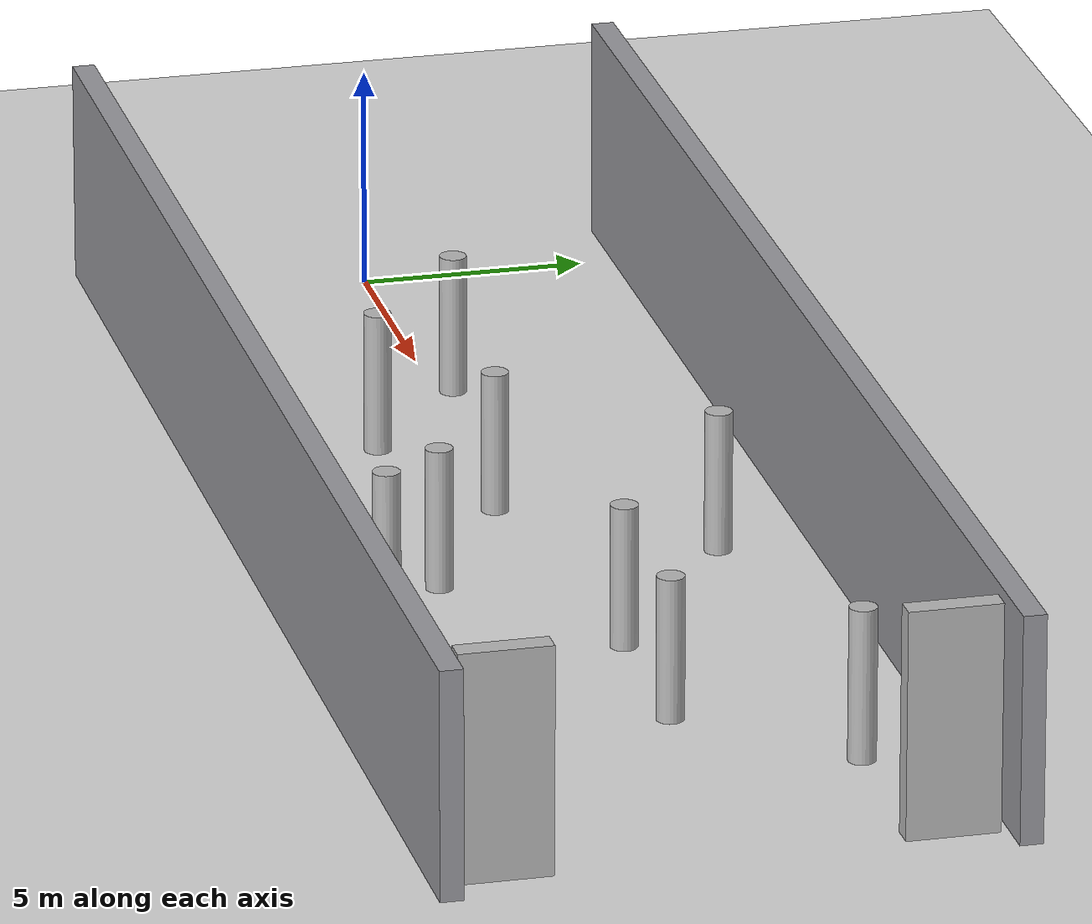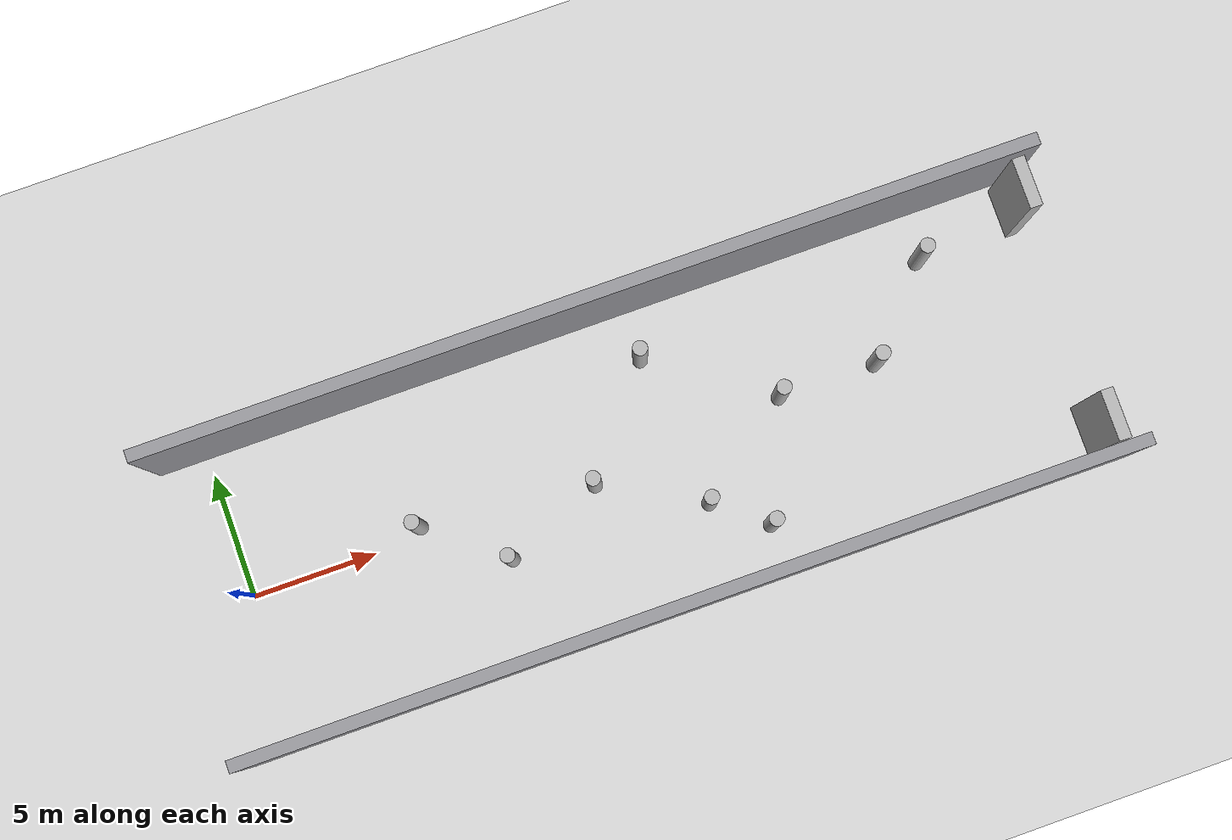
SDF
<sdf version="1.10">
 <world name="obstacle_avoidance">
  <physics type="ode">
   <max_step_size>0.0040000000000000001</max_step_size>
   <real_time_factor>1</real_time_factor>
   <real_time_update_rate>250</real_time_update_rate>
  </physics>
  <plugin name="gz::sim::systems::Physics" filename="gz-sim-physics-system"/>
  <plugin name="gz::sim::systems::UserCommands" filename="gz-sim-user-commands-system"/>
  <plugin name="gz::sim::systems::SceneBroadcaster" filename="gz-sim-scene-broadcaster-system"/>
  <plugin name="gz::sim::systems::Contact" filename="gz-sim-contact-system"/>
  <plugin name="gz::sim::systems::Imu" filename="gz-sim-imu-system"/>
  <plugin name="gz::sim::systems::AirPressure" filename="gz-sim-air-pressure-system"/>
  <plugin name="gz::sim::systems::AirSpeed" filename="gz-sim-air-speed-system"/>
  <plugin name="gz::sim::systems::ApplyLinkWrench" filename="gz-sim-apply-link-wrench-system"/>
  <plugin name="gz::sim::systems::NavSat" filename="gz-sim-navsat-system"/>
  <plugin name="gz::sim::systems::Magnetometer" filename="gz-sim-magnetometer-system"/>
  <plugin name="gz::sim::systems::Sensors" filename="gz-sim-sensors-system">
   <render_engine>ogre2</render_engine>
  </plugin>
  <plugin name="custom::OpticalFlowSystem" filename="libOpticalFlowSystem.so"/>
  <plugin name="custom::GstCameraSystem" filename="libGstCameraSystem.so"/>
  <gravity>0 0 -9.8000000000000007</gravity>
  <magnetic_field>6.0000000000000002e-06 2.3e-05 -4.1999999999999998e-05</magnetic_field>
  <atmosphere type="adiabatic"/>
  <scene>
   <grid>true</grid>
   <ambient>0.449999988 0.449999988 0.449999988 1</ambient>
   <background>0.74000001 0.769999981 0.819999993 1</background>
   <shadows>true</shadows>
  </scene>
  <spherical_coordinates>
   <surface_model>EARTH_WGS84</surface_model>
   <world_frame_orientation>ENU</world_frame_orientation>
   <latitude_deg>47.397971057728974</latitude_deg>
   <longitude_deg>8.5461637398001464</longitude_deg>
   <elevation>0</elevation>
   <heading_deg>0</heading_deg>
  </spherical_coordinates>
  <model name="ground_plane">
   <static>true</static>
   <link name="link">
    <collision name="collision">
     <geometry><plane><normal>0 0 1</normal><size>1 1</size></plane></geometry>
    </collision>
    <visual name="visual">
     <geometry><plane><normal>0 0 1</normal><size>120 120</size></plane></geometry>
     <material>
      <ambient>0.850000024 0.850000024 0.850000024 1</ambient>
      <diffuse>0.850000024 0.850000024 0.850000024 1</diffuse>
      <specular>0.400000006 0.400000006 0.400000006 1</specular>
     </material>
    </visual>
    <inertial>
     <mass>1</mass>
     <inertia><ixx>1</ixx><ixy>0</ixy><ixz>0</ixz><iyy>1</iyy><iyz>0</iyz><izz>1</izz></inertia>
    </inertial>
   </link>
  </model>
  <model name="lane_left_wall">
   <static>false</static>
   <pose>16 6 2.4999873987411871 -1.5452868411422002e-16 1.6520055580100191e-18 3.8614553100829292e-20</pose>
   <link name="link">
    <collision name="collision"><geometry><box><size>36 0.5 5</size></box></geometry></collision>
    <visual name="visual">
     <geometry><box><size>36 0.5 5</size></box></geometry>
     <material>
      <ambient>0.5 0.5 0.519999981 1</ambient>
      <diffuse>0.600000024 0.600000024 0.620000005 1</diffuse>
     </material>
    </visual>
    <inertial>
     <mass>1</mass>
     <inertia><ixx>1</ixx><ixy>0</ixy><ixz>0</ixz><iyy>1</iyy><iyz>0</iyz><izz>1</izz></inertia>
    </inertial>
   </link>
  </model>
  <model name="lane_right_wall">
   <static>false</static>
   <pose>16 -6 2.4999873987411871 -1.2772232356273819e-16 9.5017205798471489e-18 1.3757542690107612e-19</pose>
   <link name="link">
    <collision name="collision"><geometry><box><size>36 0.5 5</size></box></geometry></collision>
    <visual name="visual">
     <geometry><box><size>36 0.5 5</size></box></geometry>
     <material>
      <ambient>0.5 0.5 0.519999981 1</ambient>
      <diffuse>0.600000024 0.600000024 0.620000005 1</diffuse>
     </material>
    </visual>
    <inertial>
     <mass>1</mass>
     <inertia><ixx>1</ixx><ixy>0</ixy><ixz>0</ixz><iyy>1</iyy><iyz>0</iyz><izz>1</izz></inertia>
    </inertial>
   </link>
  </model>
  <model name="block_01">
   <static>false</static>
   <pose>7 0.39118960499763489 1.599999868271605 2.4560360284247512e-16 2.4012076191234335e-16 -4.4567146585556865e-18</pose>
   <link name="link">
    <collision name="collision">
     <geometry>
      <cylinder><radius>0.29999999999999999</radius><length>3.2000000000000002</length></cylinder>
     </geometry>
    </collision>
    <visual name="visual">
     <geometry>
      <cylinder><radius>0.29999999999999999</radius><length>3.2000000000000002</length></cylinder>
     </geometry>
    </visual>
    <inertial>
     <mass>1</mass>
     <inertia><ixx>1</ixx><ixy>0</ixy><ixz>0</ixz><iyy>1</iyy><iyz>0</iyz><izz>1</izz></inertia>
    </inertial>
   </link>
  </model>
  <model name="block_02">
   <static>false</static>
   <pose>10 -2 1.5999991336223707 -2.4656638708241914e-17 2.5742117864282655e-17 -1.2283136786083452e-19</pose>
   <link name="link">
    <collision name="collision">
     <geometry>
      <cylinder><radius>0.29999999999999999</radius><length>3.2000000000000002</length></cylinder>
     </geometry>
    </collision>
    <visual name="visual">
     <geometry>
      <cylinder><radius>0.29999999999999999</radius><length>3.2000000000000002</length></cylinder>
     </geometry>
    </visual>
    <inertial>
     <mass>1</mass>
     <inertia><ixx>1</ixx><ixy>0</ixy><ixz>0</ixz><iyy>1</iyy><iyz>0</iyz><izz>1</izz></inertia>
    </inertial>
   </link>
  </model>
  <model name="block_03">
   <static>false</static>
   <pose>14 -0.33323347568511963 1.5999991508550928 4.6894431603942206e-16 4.3230323569634301e-16 2.7398196150078461e-18</pose>
   <link name="link">
    <collision name="collision">
     <geometry>
      <cylinder><radius>0.29999999999999999</radius><length>3.2000000000000002</length></cylinder>
     </geometry>
    </collision>
    <visual name="visual">
     <geometry>
      <cylinder><radius>0.29999999999999999</radius><length>3.2000000000000002</length></cylinder>
     </geometry>
    </visual>
    <inertial>
     <mass>1</mass>
     <inertia><ixx>1</ixx><ixy>0</ixy><ixz>0</ixz><iyy>1</iyy><iyz>0</iyz><izz>1</izz></inertia>
    </inertial>
   </link>
  </model>
  <model name="block_04">
   <static>false</static>
   <pose>18 -2.5 1.5999998682091516 -1.4788667598453273e-16 8.4721107756964608e-17 -1.8256497920508446e-18</pose>
   <link name="link">
    <collision name="collision">
     <geometry>
      <cylinder><radius>0.29999999999999999</radius><length>3.2000000000000002</length></cylinder>
     </geometry>
    </collision>
    <visual name="visual">
     <geometry>
      <cylinder><radius>0.29999999999999999</radius><length>3.2000000000000002</length></cylinder>
     </geometry>
    </visual>
    <inertial>
     <mass>1</mass>
     <inertia><ixx>1</ixx><ixy>0</ixy><ixz>0</ixz><iyy>1</iyy><iyz>0</iyz><izz>1</izz></inertia>
    </inertial>
   </link>
  </model>
  <model name="block_05">
   <static>false</static>
   <pose>22 0.52860873937606812 1.5999992089195469 3.6720365610000824e-17 3.4102435962502152e-17 2.0027628807313998e-19</pose>
   <link name="link">
    <collision name="collision">
     <geometry>
      <cylinder><radius>0.29999999999999999</radius><length>3.2000000000000002</length></cylinder>
     </geometry>
    </collision>
    <visual name="visual">
     <geometry>
      <cylinder><radius>0.29999999999999999</radius><length>3.2000000000000002</length></cylinder>
     </geometry>
    </visual>
    <inertial>
     <mass>1</mass>
     <inertia><ixx>1</ixx><ixy>0</ixy><ixz>0</ixz><iyy>1</iyy><iyz>0</iyz><izz>1</izz></inertia>
    </inertial>
   </link>
  </model>
  <model name="block_06">
   <static>false</static>
   <pose>26 0.51227653026580811 1.5999991512039153 -7.5301541083234489e-17 1.154727985574426e-16 2.2140155290325793e-18</pose>
   <link name="link">
    <collision name="collision">
     <geometry>
      <cylinder><radius>0.29999999999999999</radius><length>3.2000000000000002</length></cylinder>
     </geometry>
    </collision>
    <visual name="visual">
     <geometry>
      <cylinder><radius>0.29999999999999999</radius><length>3.2000000000000002</length></cylinder>
     </geometry>
    </visual>
    <inertial>
     <mass>1</mass>
     <inertia><ixx>1</ixx><ixy>0</ixy><ixz>0</ixz><iyy>1</iyy><iyz>0</iyz><izz>1</izz></inertia>
    </inertial>
   </link>
  </model>
  <model name="cyl_01">
   <static>false</static>
   <pose>17.332599639892578 3.760408878326416 1.5999992327583257 1.0429648409690147e-17 -6.6954318932767842e-19 -1.5023853008437914e-19</pose>
   <link name="link">
    <collision name="collision">
     <geometry>
      <cylinder><radius>0.29999999999999999</radius><length>3.2000000000000002</length></cylinder>
     </geometry>
    </collision>
    <visual name="visual">
     <geometry>
      <cylinder><radius>0.29999999999999999</radius><length>3.2000000000000002</length></cylinder>
     </geometry>
    </visual>
    <inertial>
     <mass>1</mass>
     <inertia><ixx>1</ixx><ixy>0</ixy><ixz>0</ixz><iyy>1</iyy><iyz>0</iyz><izz>1</izz></inertia>
    </inertial>
   </link>
  </model>
  <model name="cyl_02">
   <static>false</static>
   <pose>20 -4.0999999999999996 1.7999992086633334 -5.95015447457351e-18 -7.1830272029298781e-18 8.102279845254366e-20</pose>
   <link name="link">
    <collision name="collision">
     <geometry>
      <cylinder><radius>0.29999999999999999</radius><length>3.6000000000000001</length></cylinder>
     </geometry>
    </collision>
    <visual name="visual">
     <geometry>
      <cylinder><radius>0.29999999999999999</radius><length>3.6000000000000001</length></cylinder>
     </geometry>
    </visual>
    <inertial>
     <mass>1</mass>
     <inertia><ixx>1</ixx><ixy>0</ixy><ixz>0</ixz><iyy>1</iyy><iyz>0</iyz><izz>1</izz></inertia>
    </inertial>
   </link>
  </model>
  <model name="cyl_03">
   <static>false</static>
   <pose>29 3.7999999999999998 1.6999992086633333 2.9183300555717811e-18 3.6794603956307752e-18 6.9962869253696579e-20</pose>
   <link name="link">
    <collision name="collision">
     <geometry>
      <cylinder><radius>0.29999999999999999</radius><length>3.3999999999999999</length></cylinder>
     </geometry>
    </collision>
    <visual name="visual">
     <geometry>
      <cylinder><radius>0.29999999999999999</radius><length>3.3999999999999999</length></cylinder>
     </geometry>
    </visual>
    <inertial>
     <mass>1</mass>
     <inertia><ixx>1</ixx><ixy>0</ixy><ixz>0</ixz><iyy>1</iyy><iyz>0</iyz><izz>1</izz></inertia>
    </inertial>
   </link>
  </model>
  <model name="goal_gate_left">
   <static>false</static>
   <pose>33 4.5726494789123535 2.4999999991915041 -9.818021018429549e-21 -2.261780723789857e-20 2.989727330351529e-23</pose>
   <link name="link">
    <collision name="collision"><geometry><box><size>0.5 2 5</size></box></geometry></collision>
    <visual name="visual"><geometry><box><size>0.5 2 5</size></box></geometry></visual>
    <inertial>
     <mass>1</mass>
     <inertia><ixx>1</ixx><ixy>0</ixy><ixz>0</ixz><iyy>1</iyy><iyz>0</iyz><izz>1</izz></inertia>
    </inertial>
   </link>
  </model>
  <model name="goal_gate_right">
   <static>false</static>
   <pose>33 -4.7045292854309082 2.4999999991915041 -6.1789972928921255e-20 2.264086448742883e-21 -5.7302840802427736e-21</pose>
   <link name="link">
    <collision name="collision"><geometry><box><size>0.5 2 5</size></box></geometry></collision>
    <visual name="visual"><geometry><box><size>0.5 2 5</size></box></geometry></visual>
    <inertial>
     <mass>1</mass>
     <inertia><ixx>1</ixx><ixy>0</ixy><ixz>0</ixz><iyy>1</iyy><iyz>0</iyz><izz>1</izz></inertia>
    </inertial>
   </link>
  </model>
  <light name="sunUTC" type="directional">
   <pose>0 0 500 0 0 0</pose>
   <intensity>1</intensity>
   <direction>0.001 0.625 -0.78000000000000003</direction>
   <diffuse>0.899999976 0.899999976 0.899999976 1</diffuse>
   <specular>0.25 0.25 0.25 1</specular>
   <attenuation><range>2000</range><linear>0</linear><constant>1</constant><quadratic>0</quadratic></attenuation>
   <spot><inner_angle>0</inner_angle><outer_angle>0</outer_angle><falloff>0</falloff></spot>
  </light>
 </world>
</sdf>
